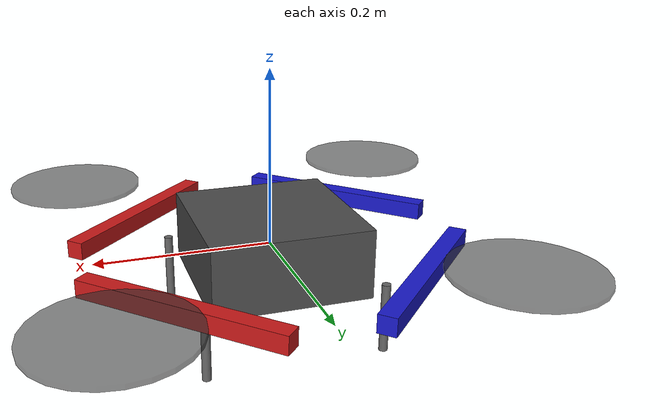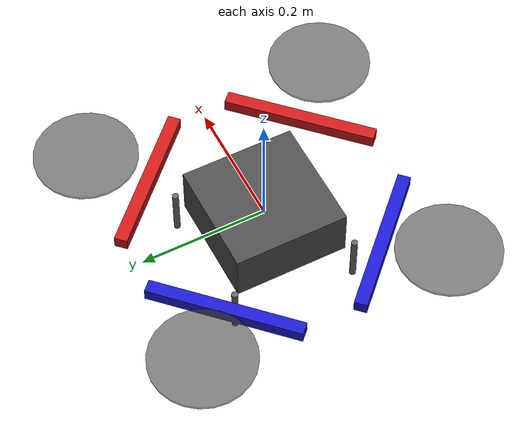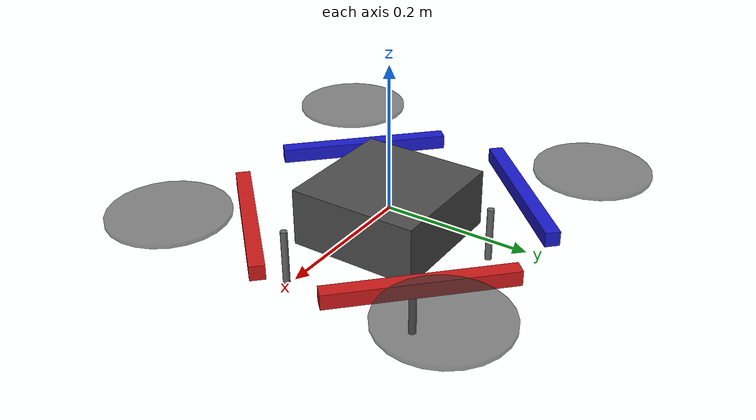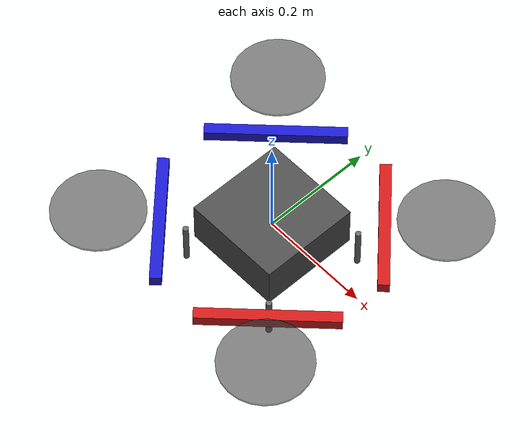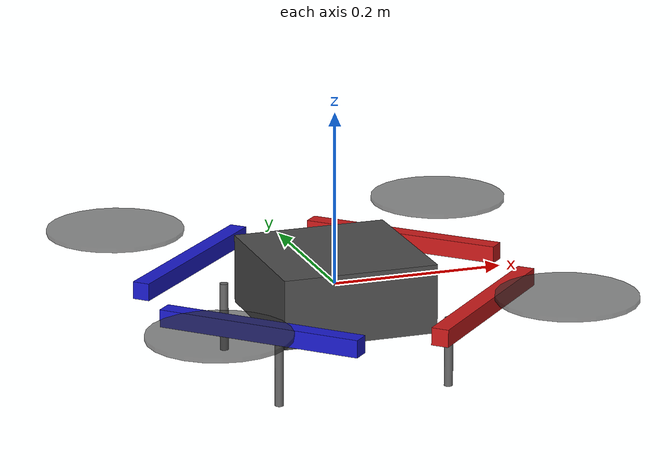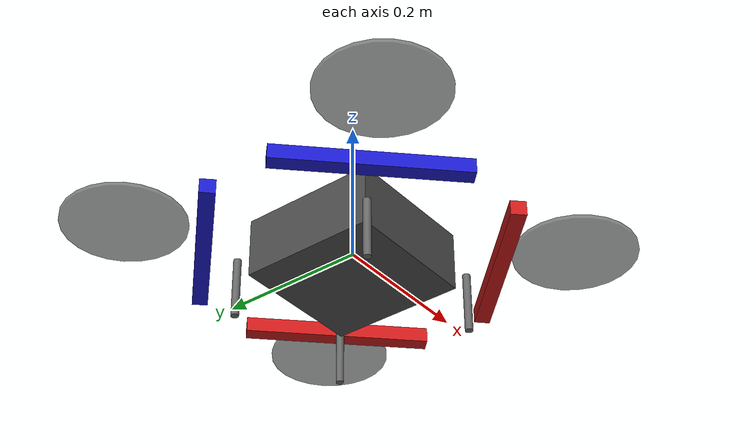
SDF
<?xml version="1.0"?>
<sdf version="1.6">
  <model name="quadrotor">
    <static>false</static>
    <link name="base_link">
      <gravity>false</gravity>
      <inertial>
        <mass>1.5</mass>
        <inertia>
          <ixx>0.035</ixx>
          <iyy>0.035</iyy>
          <izz>0.06</izz>
          <ixy>0</ixy>
          <ixz>0</ixz>
          <iyz>0</iyz>
        </inertia>
      </inertial>

      <!-- Central body -->
      <collision name="body_collision">
        <geometry>
          <box><size>0.18 0.18 0.08</size></box>
        </geometry>
      </collision>
      <visual name="body_visual">
        <geometry>
          <box><size>0.18 0.18 0.08</size></box>
        </geometry>
        <material>
          <ambient>0.2 0.2 0.2 1</ambient>
          <diffuse>0.3 0.3 0.3 1</diffuse>
        </material>
      </visual>

      <!-- Front-right arm (red) -->
      <visual name="arm_fr">
        <pose>0.13 -0.13 0 0 0 0.785</pose>
        <geometry>
          <box><size>0.24 0.02 0.02</size></box>
        </geometry>
        <material>
          <ambient>0.6 0.1 0.1 1</ambient>
          <diffuse>0.8 0.1 0.1 1</diffuse>
        </material>
      </visual>
      <visual name="prop_fr">
        <pose>0.2 -0.2 0.025 0 0 0</pose>
        <geometry>
          <cylinder><radius>0.08</radius><length>0.005</length></cylinder>
        </geometry>
        <material>
          <ambient>0.1 0.1 0.1 0.6</ambient>
          <diffuse>0.2 0.2 0.2 0.6</diffuse>
        </material>
      </visual>

      <!-- Front-left arm (red) -->
      <visual name="arm_fl">
        <pose>0.13 0.13 0 0 0 -0.785</pose>
        <geometry>
          <box><size>0.24 0.02 0.02</size></box>
        </geometry>
        <material>
          <ambient>0.6 0.1 0.1 1</ambient>
          <diffuse>0.8 0.1 0.1 1</diffuse>
        </material>
      </visual>
      <visual name="prop_fl">
        <pose>0.2 0.2 0.025 0 0 0</pose>
        <geometry>
          <cylinder><radius>0.08</radius><length>0.005</length></cylinder>
        </geometry>
        <material>
          <ambient>0.1 0.1 0.1 0.6</ambient>
          <diffuse>0.2 0.2 0.2 0.6</diffuse>
        </material>
      </visual>

      <!-- Back-right arm (blue) -->
      <visual name="arm_br">
        <pose>-0.13 -0.13 0 0 0 -0.785</pose>
        <geometry>
          <box><size>0.24 0.02 0.02</size></box>
        </geometry>
        <material>
          <ambient>0.1 0.1 0.6 1</ambient>
          <diffuse>0.1 0.1 0.8 1</diffuse>
        </material>
      </visual>
      <visual name="prop_br">
        <pose>-0.2 -0.2 0.025 0 0 0</pose>
        <geometry>
          <cylinder><radius>0.08</radius><length>0.005</length></cylinder>
        </geometry>
        <material>
          <ambient>0.1 0.1 0.1 0.6</ambient>
          <diffuse>0.2 0.2 0.2 0.6</diffuse>
        </material>
      </visual>

      <!-- Back-left arm (blue) -->
      <visual name="arm_bl">
        <pose>-0.13 0.13 0 0 0 0.785</pose>
        <geometry>
          <box><size>0.24 0.02 0.02</size></box>
        </geometry>
        <material>
          <ambient>0.1 0.1 0.6 1</ambient>
          <diffuse>0.1 0.1 0.8 1</diffuse>
        </material>
      </visual>
      <visual name="prop_bl">
        <pose>-0.2 0.2 0.025 0 0 0</pose>
        <geometry>
          <cylinder><radius>0.08</radius><length>0.005</length></cylinder>
        </geometry>
        <material>
          <ambient>0.1 0.1 0.1 0.6</ambient>
          <diffuse>0.2 0.2 0.2 0.6</diffuse>
        </material>
      </visual>

      <!-- Landing legs -->
      <visual name="leg_fl">
        <pose>0.1 0.1 -0.06 0 0 0</pose>
        <geometry>
          <cylinder><radius>0.005</radius><length>0.08</length></cylinder>
        </geometry>
        <material><diffuse>0.4 0.4 0.4 1</diffuse></material>
      </visual>
      <visual name="leg_fr">
        <pose>0.1 -0.1 -0.06 0 0 0</pose>
        <geometry>
          <cylinder><radius>0.005</radius><length>0.08</length></cylinder>
        </geometry>
        <material><diffuse>0.4 0.4 0.4 1</diffuse></material>
      </visual>
      <visual name="leg_bl">
        <pose>-0.1 0.1 -0.06 0 0 0</pose>
        <geometry>
          <cylinder><radius>0.005</radius><length>0.08</length></cylinder>
        </geometry>
        <material><diffuse>0.4 0.4 0.4 1</diffuse></material>
      </visual>
      <visual name="leg_br">
        <pose>-0.1 -0.1 -0.06 0 0 0</pose>
        <geometry>
          <cylinder><radius>0.005</radius><length>0.08</length></cylinder>
        </geometry>
        <material><diffuse>0.4 0.4 0.4 1</diffuse></material>
      </visual>
    </link>
  </model>
</sdf>
